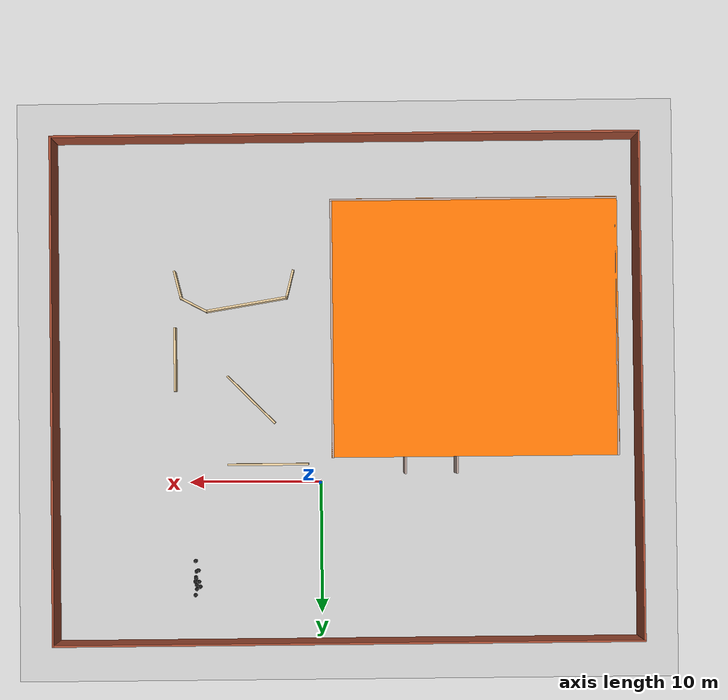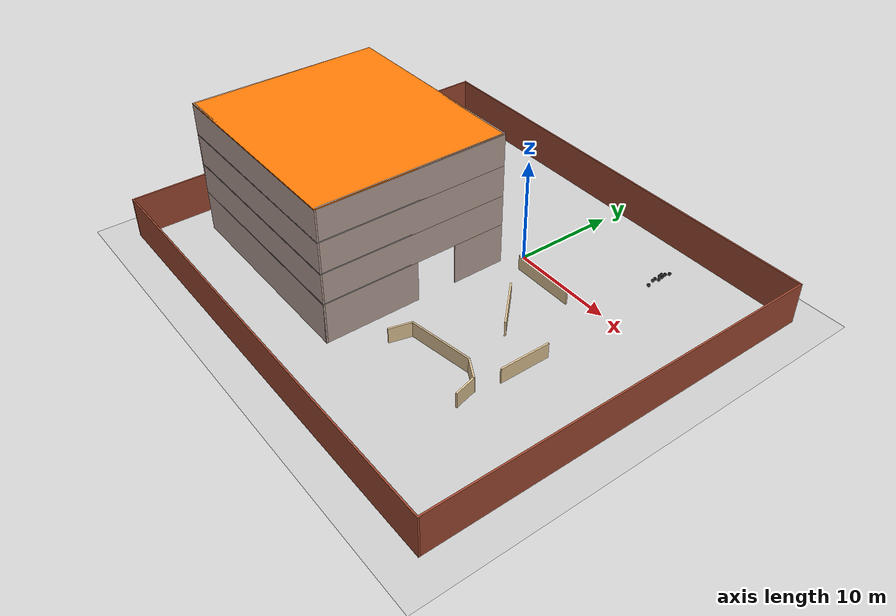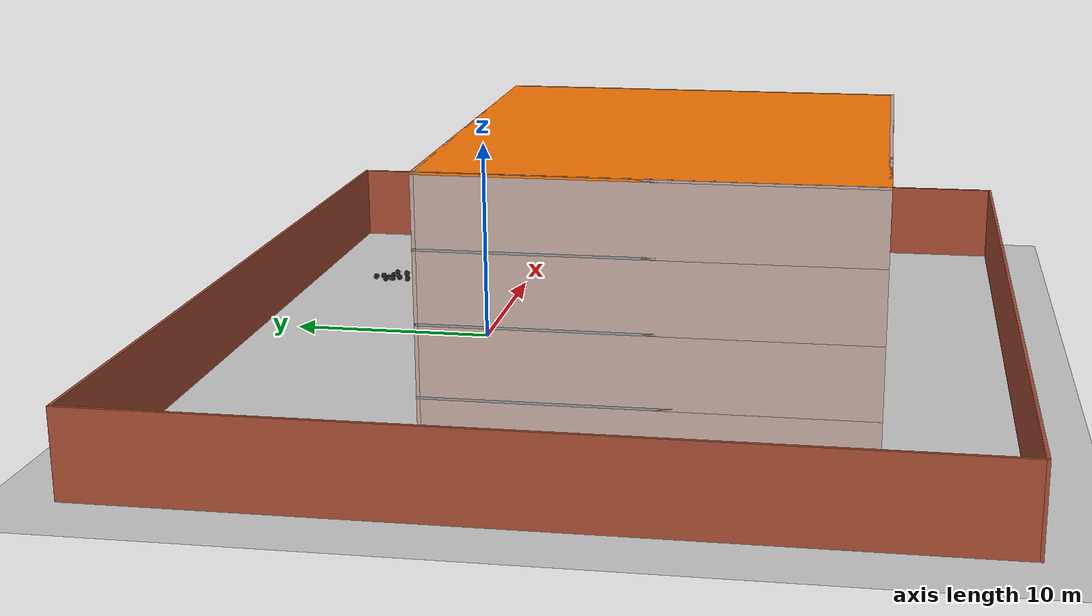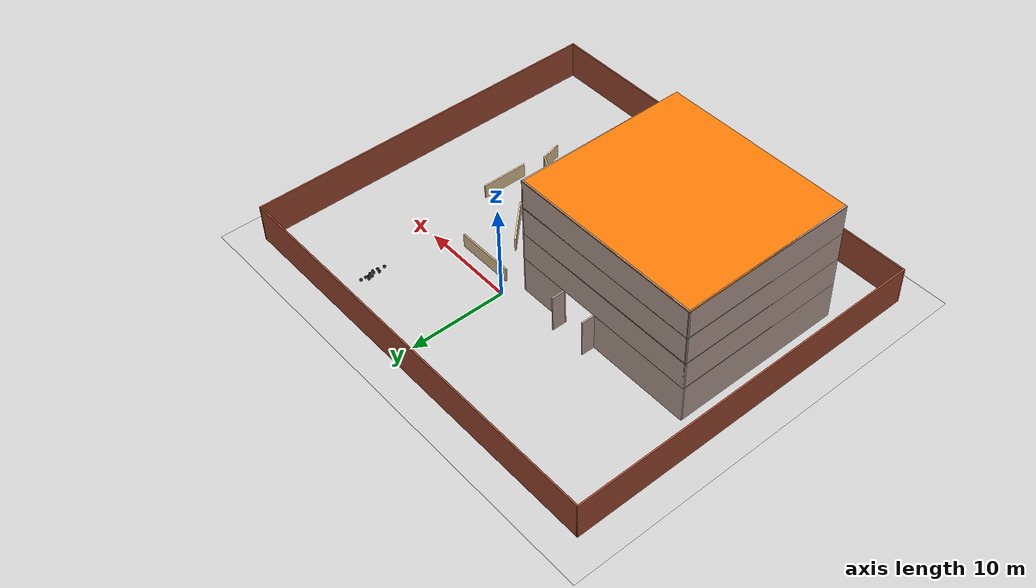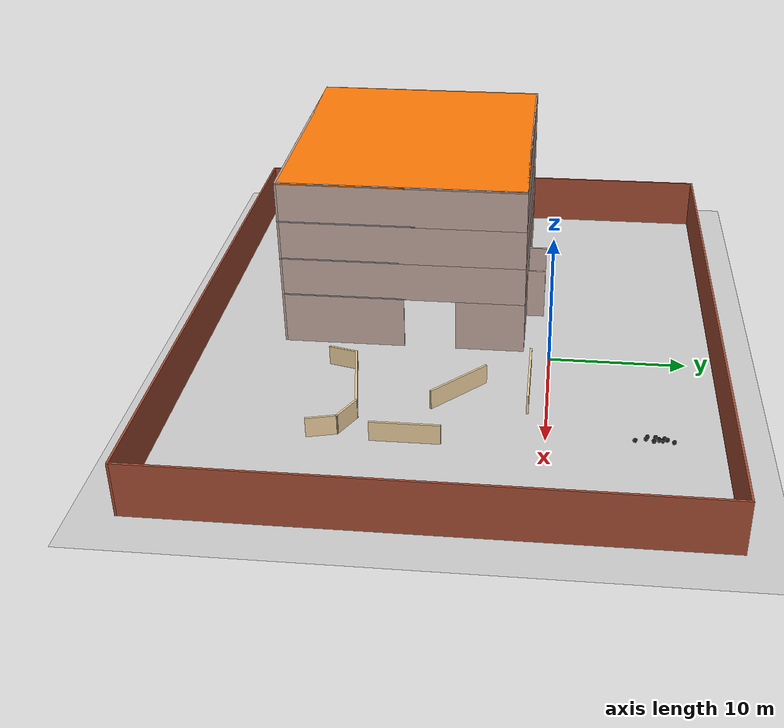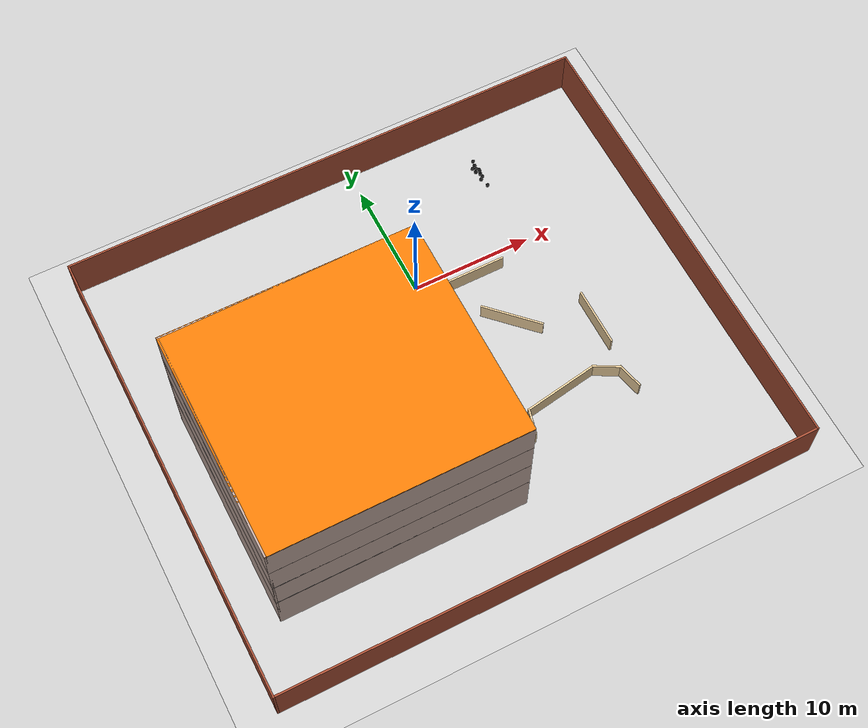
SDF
<sdf version="1.6">
 <world name="default">
  <model name="ground_plane">
   <static>1</static>
   <link name="link">
    <collision name="collision">
     <geometry><plane><normal>0 0 1</normal><size>100 100</size></plane></geometry>
     <surface><friction><ode><mu>100</mu><mu2>50</mu2></ode></friction></surface>
    </collision>
    <visual name="visual">
     <cast_shadows>0</cast_shadows>
     <geometry><plane><normal>0 0 1</normal><size>100 100</size></plane></geometry>
     <material>
      <script><uri>file://media/materials/scripts/gazebo.material</uri><name>Gazebo/Grey</name></script>
     </material>
    </visual>
   </link>
  </model>
  <model name="building2">
   <pose>-11 -10.325 0 0 -0 0</pose>
   <link name="Floor_0">
    <collision name="Floor_0_Collision">
     <geometry><box><size>20.15 18.15 0.1</size></box></geometry>
     <pose>0 0 0.05 0 -0 0</pose>
    </collision>
    <visual name="Floor_0_Visual">
     <pose>0 0 0.05 0 -0 0</pose>
     <geometry><box><size>20.15 18.15 0.1</size></box></geometry>
     <material>
      <script><uri>file://media/materials/scripts/gazebo.material</uri><name>Gazebo/Grey</name></script>
      <ambient>1 1 1 1</ambient>
     </material>
     <meta><layer>1</layer></meta>
    </visual>
    <pose>-0 -0.675 4 0 -0 0</pose>
   </link>
   <link name="Floor_2">
    <collision name="Floor_2_Collision">
     <geometry><box><size>20.15 18.15 0.1</size></box></geometry>
     <pose>0 0 0.05 0 -0 0</pose>
    </collision>
    <visual name="Floor_2_Visual">
     <pose>0 0 0.05 0 -0 0</pose>
     <geometry><box><size>20.15 18.15 0.1</size></box></geometry>
     <material>
      <script><uri>file://media/materials/scripts/gazebo.material</uri><name>Gazebo/Grey</name></script>
      <ambient>1 1 1 1</ambient>
     </material>
     <meta><layer>2</layer></meta>
    </visual>
    <pose>-0 -0.675 7 0 -0 0</pose>
   </link>
   <link name="Floor_3">
    <collision name="Floor_3_Collision">
     <geometry><box><size>20.15 18.15 0.1</size></box></geometry>
     <pose>0 0 0.05 0 -0 0</pose>
    </collision>
    <visual name="Floor_3_Visual">
     <pose>0 0 0.05 0 -0 0</pose>
     <geometry><box><size>20.15 18.15 0.1</size></box></geometry>
     <material>
      <script><uri>file://media/materials/scripts/gazebo.material</uri><name>Gazebo/Grey</name></script>
      <ambient>1 1 1 1</ambient>
     </material>
     <meta><layer>3</layer></meta>
    </visual>
    <pose>-0 -0.675 10 0 -0 0</pose>
   </link>
   <link name="Floor_8">
    <collision name="Floor_8_Collision">
     <geometry><box><size>20.15 18.15 0.1</size></box></geometry>
     <pose>0 0 0.05 0 -0 0</pose>
    </collision>
    <visual name="Floor_8_Visual">
     <pose>0 0 0.05 0 -0 0</pose>
     <geometry><box><size>20.15 18.15 0.1</size></box></geometry>
     <material>
      <script><uri>file://media/materials/scripts/gazebo.material</uri><name>Gazebo/Grey</name></script>
      <ambient>0.996078 0.47451 0.0196078 1</ambient>
     </material>
     <meta><layer>4</layer></meta>
    </visual>
    <pose>-0 -0.675 13 0 -0 0</pose>
   </link>
   <link name="Wall_11">
    <collision name="Wall_11_Collision">
     <geometry><box><size>1.5 0.15 4</size></box></geometry>
     <pose>0 0 2 0 -0 0</pose>
    </collision>
    <visual name="Wall_11_Visual">
     <pose>0 0 2 0 -0 0</pose>
     <geometry><box><size>1.5 0.15 4</size></box></geometry>
     <material>
      <script><uri>file://media/materials/scripts/gazebo.material</uri><name>Gazebo/Grey</name></script>
      <ambient>0.760784 0.662745 0.627451 1</ambient>
     </material>
     <meta><layer>0</layer></meta>
    </visual>
    <pose>0.8 9 0 0 -0 -1.5708</pose>
   </link>
   <link name="Wall_12">
    <collision name="Wall_12_Collision">
     <geometry><box><size>10.95 0.15 4</size></box></geometry>
     <pose>0 0 2 0 -0 0</pose>
    </collision>
    <visual name="Wall_12_Visual">
     <pose>0 0 2 0 -0 0</pose>
     <geometry><box><size>10.95 0.15 4</size></box></geometry>
     <material>
      <script><uri>file://media/materials/scripts/gazebo.material</uri><name>Gazebo/Grey</name></script>
      <ambient>0.760784 0.662745 0.627451 1</ambient>
     </material>
     <meta><layer>0</layer></meta>
    </visual>
    <pose>-4.6 8.325 0 0 -0 3.14159</pose>
   </link>
   <link name="Wall_14">
    <collision name="Wall_14_Collision">
     <geometry><box><size>18.15 0.15 4</size></box></geometry>
     <pose>0 0 2 0 -0 0</pose>
    </collision>
    <visual name="Wall_14_Visual">
     <pose>0 0 2 0 -0 0</pose>
     <geometry><box><size>18.15 0.15 4</size></box></geometry>
     <material>
      <script><uri>file://media/materials/scripts/gazebo.material</uri><name>Gazebo/Grey</name></script>
      <ambient>0.760784 0.662745 0.627451 1</ambient>
     </material>
     <meta><layer>0</layer></meta>
    </visual>
    <pose>-10 -0.675 0 0 -0 -1.5708</pose>
   </link>
   <link name="Wall_16">
    <collision name="Wall_16_Collision">
     <geometry><box><size>20.15 0.15 4</size></box></geometry>
     <pose>0 0 2 0 -0 0</pose>
    </collision>
    <visual name="Wall_16_Visual">
     <pose>0 0 2 0 -0 0</pose>
     <geometry><box><size>20.15 0.15 4</size></box></geometry>
     <material>
      <script><uri>file://media/materials/scripts/gazebo.material</uri><name>Gazebo/Grey</name></script>
      <ambient>0.760784 0.662745 0.627451 1</ambient>
     </material>
     <meta><layer>0</layer></meta>
    </visual>
    <pose>-0 -9.675 0 0 -0 0</pose>
   </link>
   <link name="Wall_24">
    <collision name="Wall_24_Collision">
     <geometry><box><size>18.15 0.15 3</size></box></geometry>
     <pose>0 0 1.5 0 -0 0</pose>
    </collision>
    <visual name="Wall_24_Visual">
     <pose>0 0 1.5 0 -0 0</pose>
     <geometry><box><size>18.15 0.15 3</size></box></geometry>
     <material>
      <script><uri>file://media/materials/scripts/gazebo.material</uri><name>Gazebo/Grey</name></script>
      <ambient>0.760784 0.662745 0.627451 1</ambient>
     </material>
     <meta><layer>1</layer></meta>
    </visual>
    <pose>-10 -0.675 4 0 -0 -1.5708</pose>
   </link>
   <link name="Wall_25">
    <collision name="Wall_25_Collision">
     <geometry><box><size>20.15 0.15 3</size></box></geometry>
     <pose>0 0 1.5 0 -0 0</pose>
    </collision>
    <visual name="Wall_25_Visual">
     <pose>0 0 1.5 0 -0 0</pose>
     <geometry><box><size>20.15 0.15 3</size></box></geometry>
     <material>
      <script><uri>file://media/materials/scripts/gazebo.material</uri><name>Gazebo/Grey</name></script>
      <ambient>0.760784 0.662745 0.627451 1</ambient>
     </material>
     <meta><layer>1</layer></meta>
    </visual>
    <pose>-0 -9.675 4 0 -0 0</pose>
   </link>
   <link name="Wall_31">
    <collision name="Wall_31_Collision">
     <geometry><box><size>20.15 0.15 3</size></box></geometry>
     <pose>0 0 1.5 0 -0 0</pose>
    </collision>
    <visual name="Wall_31_Visual">
     <pose>0 0 1.5 0 -0 0</pose>
     <geometry><box><size>20.15 0.15 3</size></box></geometry>
     <material>
      <script><uri>file://media/materials/scripts/gazebo.material</uri><name>Gazebo/Grey</name></script>
      <ambient>0.760784 0.662745 0.627451 1</ambient>
     </material>
     <meta><layer>1</layer></meta>
    </visual>
    <pose>-0 8.325 4 0 -0 0</pose>
   </link>
   <link name="Wall_33">
    <collision name="Wall_33_Collision">
     <geometry><box><size>18 0.15 3</size></box></geometry>
     <pose>0 0 1.5 0 -0 0</pose>
    </collision>
    <visual name="Wall_33_Visual">
     <pose>0 0 1.5 0 -0 0</pose>
     <geometry><box><size>18 0.15 3</size></box></geometry>
     <material>
      <script><uri>file://media/materials/scripts/gazebo.material</uri><name>Gazebo/Grey</name></script>
      <ambient>0.760784 0.662745 0.627451 1</ambient>
     </material>
     <meta><layer>1</layer></meta>
    </visual>
    <pose>10 -0.6 4 0 -0 -1.5708</pose>
   </link>
   <link name="Wall_4">
    <collision name="Wall_4_Collision">
     <geometry><box><size>5.15 0.15 4</size></box></geometry>
     <pose>0 0 2 0 -0 0</pose>
    </collision>
    <visual name="Wall_4_Visual">
     <pose>0 0 2 0 -0 0</pose>
     <geometry><box><size>5.15 0.15 4</size></box></geometry>
     <material>
      <script><uri>file://media/materials/scripts/gazebo.material</uri><name>Gazebo/Grey</name></script>
      <ambient>0.760784 0.662745 0.627451 1</ambient>
     </material>
     <meta><layer>0</layer></meta>
    </visual>
    <pose>10 5.825 0 0 -0 -1.5708</pose>
   </link>
   <link name="Wall_42">
    <collision name="Wall_42_Collision">
     <geometry><box><size>18.15 0.15 3</size></box></geometry>
     <pose>0 0 1.5 0 -0 0</pose>
    </collision>
    <visual name="Wall_42_Visual">
     <pose>0 0 1.5 0 -0 0</pose>
     <geometry><box><size>18.15 0.15 3</size></box></geometry>
     <material>
      <script><uri>file://media/materials/scripts/gazebo.material</uri><name>Gazebo/Grey</name></script>
      <ambient>0.760784 0.662745 0.627451 1</ambient>
     </material>
     <meta><layer>2</layer></meta>
    </visual>
    <pose>-10 -0.675 7 0 -0 -1.5708</pose>
   </link>
   <link name="Wall_43">
    <collision name="Wall_43_Collision">
     <geometry><box><size>20.15 0.15 3</size></box></geometry>
     <pose>0 0 1.5 0 -0 0</pose>
    </collision>
    <visual name="Wall_43_Visual">
     <pose>0 0 1.5 0 -0 0</pose>
     <geometry><box><size>20.15 0.15 3</size></box></geometry>
     <material>
      <script><uri>file://media/materials/scripts/gazebo.material</uri><name>Gazebo/Grey</name></script>
      <ambient>0.760784 0.662745 0.627451 1</ambient>
     </material>
     <meta><layer>2</layer></meta>
    </visual>
    <pose>-0 -9.675 7 0 -0 0</pose>
   </link>
   <link name="Wall_44">
    <collision name="Wall_44_Collision">
     <geometry><box><size>20.15 0.15 3</size></box></geometry>
     <pose>0 0 1.5 0 -0 0</pose>
    </collision>
    <visual name="Wall_44_Visual">
     <pose>0 0 1.5 0 -0 0</pose>
     <geometry><box><size>20.15 0.15 3</size></box></geometry>
     <material>
      <script><uri>file://media/materials/scripts/gazebo.material</uri><name>Gazebo/Grey</name></script>
      <ambient>0.760784 0.662745 0.627451 1</ambient>
     </material>
     <meta><layer>2</layer></meta>
    </visual>
    <pose>-0 8.325 7 0 -0 0</pose>
   </link>
   <link name="Wall_45">
    <collision name="Wall_45_Collision">
     <geometry><box><size>18 0.15 3</size></box></geometry>
     <pose>0 0 1.5 0 -0 0</pose>
    </collision>
    <visual name="Wall_45_Visual">
     <pose>0 0 1.5 0 -0 0</pose>
     <geometry><box><size>18 0.15 3</size></box></geometry>
     <material>
      <script><uri>file://media/materials/scripts/gazebo.material</uri><name>Gazebo/Grey</name></script>
      <ambient>0.760784 0.662745 0.627451 1</ambient>
     </material>
     <meta><layer>2</layer></meta>
    </visual>
    <pose>10 -0.6 7 0 -0 -1.5708</pose>
   </link>
   <link name="Wall_46">
    <collision name="Wall_46_Collision">
     <geometry><box><size>18.15 0.15 3</size></box></geometry>
     <pose>0 0 1.5 0 -0 0</pose>
    </collision>
    <visual name="Wall_46_Visual">
     <pose>0 0 1.5 0 -0 0</pose>
     <geometry><box><size>18.15 0.15 3</size></box></geometry>
     <material>
      <script><uri>file://media/materials/scripts/gazebo.material</uri><name>Gazebo/Grey</name></script>
      <ambient>0.760784 0.662745 0.627451 1</ambient>
     </material>
     <meta><layer>3</layer></meta>
    </visual>
    <pose>-10 -0.675 10 0 -0 -1.5708</pose>
   </link>
   <link name="Wall_47">
    <collision name="Wall_47_Collision">
     <geometry><box><size>20.15 0.15 3</size></box></geometry>
     <pose>0 0 1.5 0 -0 0</pose>
    </collision>
    <visual name="Wall_47_Visual">
     <pose>0 0 1.5 0 -0 0</pose>
     <geometry><box><size>20.15 0.15 3</size></box></geometry>
     <material>
      <script><uri>file://media/materials/scripts/gazebo.material</uri><name>Gazebo/Grey</name></script>
      <ambient>0.760784 0.662745 0.627451 1</ambient>
     </material>
     <meta><layer>3</layer></meta>
    </visual>
    <pose>-0 -9.675 10 0 -0 0</pose>
   </link>
   <link name="Wall_48">
    <collision name="Wall_48_Collision">
     <geometry><box><size>20.15 0.15 3</size></box></geometry>
     <pose>0 0 1.5 0 -0 0</pose>
    </collision>
    <visual name="Wall_48_Visual">
     <pose>0 0 1.5 0 -0 0</pose>
     <geometry><box><size>20.15 0.15 3</size></box></geometry>
     <material>
      <script><uri>file://media/materials/scripts/gazebo.material</uri><name>Gazebo/Grey</name></script>
      <ambient>0.760784 0.662745 0.627451 1</ambient>
     </material>
     <meta><layer>3</layer></meta>
    </visual>
    <pose>-0 8.325 10 0 -0 0</pose>
   </link>
   <link name="Wall_49">
    <collision name="Wall_49_Collision">
     <geometry><box><size>18 0.15 3</size></box></geometry>
     <pose>0 0 1.5 0 -0 0</pose>
    </collision>
    <visual name="Wall_49_Visual">
     <pose>0 0 1.5 0 -0 0</pose>
     <geometry><box><size>18 0.15 3</size></box></geometry>
     <material>
      <script><uri>file://media/materials/scripts/gazebo.material</uri><name>Gazebo/Grey</name></script>
      <ambient>0.760784 0.662745 0.627451 1</ambient>
     </material>
     <meta><layer>3</layer></meta>
    </visual>
    <pose>10 -0.6 10 0 -0 -1.5708</pose>
   </link>
   <link name="Wall_6">
    <collision name="Wall_6_Collision">
     <geometry><box><size>9.15 0.15 4</size></box></geometry>
     <pose>0 0 2 0 -0 0</pose>
    </collision>
    <visual name="Wall_6_Visual">
     <pose>0 0 2 0 -0 0</pose>
     <geometry><box><size>9.15 0.15 4</size></box></geometry>
     <material>
      <script><uri>file://media/materials/scripts/gazebo.material</uri><name>Gazebo/Grey</name></script>
      <ambient>0.760784 0.662745 0.627451 1</ambient>
     </material>
     <meta><layer>0</layer></meta>
    </visual>
    <pose>10 -5.175 0 0 -0 -1.5708</pose>
   </link>
   <link name="Wall_76">
    <collision name="Wall_76_Collision">
     <geometry><box><size>18.15 0.15 0.1</size></box></geometry>
     <pose>0 0 0.05 0 -0 0</pose>
    </collision>
    <visual name="Wall_76_Visual">
     <pose>0 0 0.05 0 -0 0</pose>
     <geometry><box><size>18.15 0.15 0.1</size></box></geometry>
     <material>
      <script><uri>file://media/materials/scripts/gazebo.material</uri><name>Gazebo/Grey</name></script>
      <ambient>0.760784 0.662745 0.627451 1</ambient>
     </material>
     <meta><layer>4</layer></meta>
    </visual>
    <pose>-10 -0.675 13 0 -0 -1.5708</pose>
   </link>
   <link name="Wall_77">
    <collision name="Wall_77_Collision">
     <geometry><box><size>20.15 0.15 0.1</size></box></geometry>
     <pose>0 0 0.05 0 -0 0</pose>
    </collision>
    <visual name="Wall_77_Visual">
     <pose>0 0 0.05 0 -0 0</pose>
     <geometry><box><size>20.15 0.15 0.1</size></box></geometry>
     <material>
      <script><uri>file://media/materials/scripts/gazebo.material</uri><name>Gazebo/Grey</name></script>
      <ambient>0.760784 0.662745 0.627451 1</ambient>
     </material>
     <meta><layer>4</layer></meta>
    </visual>
    <pose>-0 -9.675 13 0 -0 0</pose>
   </link>
   <link name="Wall_78">
    <collision name="Wall_78_Collision">
     <geometry><box><size>20.15 0.15 0.1</size></box></geometry>
     <pose>0 0 0.05 0 -0 0</pose>
    </collision>
    <visual name="Wall_78_Visual">
     <pose>0 0 0.05 0 -0 0</pose>
     <geometry><box><size>20.15 0.15 0.1</size></box></geometry>
     <material>
      <script><uri>file://media/materials/scripts/gazebo.material</uri><name>Gazebo/Grey</name></script>
      <ambient>0.760784 0.662745 0.627451 1</ambient>
     </material>
     <meta><layer>4</layer></meta>
    </visual>
    <pose>-0 8.325 13 0 -0 0</pose>
   </link>
   <link name="Wall_79">
    <collision name="Wall_79_Collision">
     <geometry><box><size>18 0.15 0.1</size></box></geometry>
     <pose>0 0 0.05 0 -0 0</pose>
    </collision>
    <visual name="Wall_79_Visual">
     <pose>0 0 0.05 0 -0 0</pose>
     <geometry><box><size>18 0.15 0.1</size></box></geometry>
     <material>
      <script><uri>file://media/materials/scripts/gazebo.material</uri><name>Gazebo/Grey</name></script>
      <ambient>0.760784 0.662745 0.627451 1</ambient>
     </material>
     <meta><layer>4</layer></meta>
    </visual>
    <pose>10 -0.6 13 0 -0 -1.5708</pose>
   </link>
   <link name="Wall_8">
    <collision name="Wall_8_Collision">
     <geometry><box><size>5.5 0.15 4</size></box></geometry>
     <pose>0 0 2 0 -0 0</pose>
    </collision>
    <visual name="Wall_8_Visual">
     <pose>0 0 2 0 -0 0</pose>
     <geometry><box><size>5.5 0.15 4</size></box></geometry>
     <material>
      <script><uri>file://media/materials/scripts/gazebo.material</uri><name>Gazebo/Grey</name></script>
      <ambient>0.760784 0.662745 0.627451 1</ambient>
     </material>
     <meta><layer>0</layer></meta>
    </visual>
    <pose>7.325 8.325 0 0 -0 3.14159</pose>
   </link>
   <link name="Wall_9">
    <collision name="Wall_9_Collision">
     <geometry><box><size>1.5 0.15 4</size></box></geometry>
     <pose>0 0 2 0 -0 0</pose>
    </collision>
    <visual name="Wall_9_Visual">
     <pose>0 0 2 0 -0 0</pose>
     <geometry><box><size>1.5 0.15 4</size></box></geometry>
     <material>
      <script><uri>file://media/materials/scripts/gazebo.material</uri><name>Gazebo/Grey</name></script>
      <ambient>0.760784 0.662745 0.627451 1</ambient>
     </material>
     <meta><layer>0</layer></meta>
    </visual>
    <pose>4.65 9 0 0 -0 1.5708</pose>
   </link>
   <static>1</static>
  </model>
  <model name="wall11">
   <pose>-2 -7 0 0 -0 0</pose>
   <link name="Wall_0">
    <collision name="Wall_0_Collision">
     <geometry><box><size>44.15 0.15 4</size></box></geometry>
     <pose>0 0 2 0 -0 0</pose>
    </collision>
    <visual name="Wall_0_Visual">
     <pose>0 0 2 0 -0 0</pose>
     <geometry><box><size>44.15 0.15 4</size></box></geometry>
     <material>
      <script><uri>file://media/materials/scripts/gazebo.material</uri><name>Gazebo/Bricks</name></script>
      <ambient>1 1 1 1</ambient>
     </material>
     <meta><layer>0</layer></meta>
    </visual>
    <pose>0 19 0 0 -0 0</pose>
   </link>
   <link name="Wall_2">
    <collision name="Wall_2_Collision">
     <geometry><box><size>38.15 0.15 4</size></box></geometry>
     <pose>0 0 2 0 -0 0</pose>
    </collision>
    <visual name="Wall_2_Visual">
     <pose>0 0 2 0 -0 0</pose>
     <geometry><box><size>38.15 0.15 4</size></box></geometry>
     <material>
      <script><uri>file://media/materials/scripts/gazebo.material</uri><name>Gazebo/Bricks</name></script>
      <ambient>1 1 1 1</ambient>
     </material>
     <meta><layer>0</layer></meta>
    </visual>
    <pose>22 0 0 0 -0 -1.5708</pose>
   </link>
   <link name="Wall_4">
    <collision name="Wall_4_Collision">
     <geometry><box><size>44.15 0.15 4</size></box></geometry>
     <pose>0 0 2 0 -0 0</pose>
    </collision>
    <visual name="Wall_4_Visual">
     <pose>0 0 2 0 -0 0</pose>
     <geometry><box><size>44.15 0.15 4</size></box></geometry>
     <material>
      <script><uri>file://media/materials/scripts/gazebo.material</uri><name>Gazebo/Bricks</name></script>
      <ambient>1 1 1 1</ambient>
     </material>
     <meta><layer>0</layer></meta>
    </visual>
    <pose>0 -19 0 0 -0 3.14159</pose>
   </link>
   <link name="Wall_6">
    <collision name="Wall_6_Collision">
     <geometry><box><size>38.15 0.15 4</size></box></geometry>
     <pose>0 0 2 0 -0 0</pose>
    </collision>
    <visual name="Wall_6_Visual">
     <pose>0 0 2 0 -0 0</pose>
     <geometry><box><size>38.15 0.15 4</size></box></geometry>
     <material>
      <script><uri>file://media/materials/scripts/gazebo.material</uri><name>Gazebo/Bricks</name></script>
      <ambient>1 1 1 1</ambient>
     </material>
     <meta><layer>0</layer></meta>
    </visual>
    <pose>-22 0 0 0 -0 1.5708</pose>
   </link>
   <static>1</static>
  </model>
  <model name="haoduomiantiaa_38">
   <link name="link_0">
    <inertial>
     <mass>0.2</mass>
     <inertia>
      <ixx>0.166667</ixx>
      <ixy>0</ixy>
      <ixz>0</ixz>
      <iyy>0.166667</iyy>
      <iyz>0</iyz>
      <izz>0.166667</izz>
     </inertia>
    </inertial>
    <visual name="visual">
     <geometry>
      <mesh>
       <uri>/home/oliver/catkin_ws/src/pudong_gazebo/world/stl/haoduomianti.stl</uri>
       <scale>1 1 1</scale>
      </mesh>
     </geometry>
     <material>
      <lighting>1</lighting>
      <script><uri>file://media/materials/scripts/gazebo.material</uri><name>Gazebo/Black</name></script>
      <shader type="pixel"><normal_map>__default__</normal_map></shader>
      <ambient>0.3 0.3 0.3 1</ambient>
      <diffuse>0.7 0.7 0.7 1</diffuse>
      <specular>0.01 0.01 0.01 1</specular>
      <emissive>0 0 0 1</emissive>
     </material>
    </visual>
    <collision name="collision">
     <geometry>
      <mesh>
       <uri>/home/oliver/catkin_ws/src/pudong_gazebo/world/stl/haoduomianti.stl</uri>
       <scale>1 1 1</scale>
      </mesh>
     </geometry>
     <surface>
      <friction>
       <ode><mu>1</mu><mu2>1</mu2><fdir1>0 0 0</fdir1><slip1>0</slip1><slip2>0</slip2></ode>
       <torsional>
        <coefficient>1</coefficient>
        <patch_radius>0</patch_radius>
        <surface_radius>0</surface_radius>
        <use_patch_radius>1</use_patch_radius>
        <ode><slip>0</slip></ode>
       </torsional>
      </friction>
      <bounce><restitution_coefficient>0</restitution_coefficient><threshold>1e+06</threshold></bounce>
      <contact>
       <collide_without_contact>0</collide_without_contact>
       <collide_without_contact_bitmask>1</collide_without_contact_bitmask>
       <collide_bitmask>1</collide_bitmask>
       <ode>
        <soft_cfm>0</soft_cfm>
        <soft_erp>0.2</soft_erp>
        <kp>1e+13</kp>
        <kd>1</kd>
        <max_vel>0.01</max_vel>
        <min_depth>0</min_depth>
       </ode>
       <bullet>
        <split_impulse>1</split_impulse>
        <split_impulse_penetration_threshold>-0.01</split_impulse_penetration_threshold>
        <soft_cfm>0</soft_cfm>
        <soft_erp>0.2</soft_erp>
        <kp>1e+13</kp>
        <kd>1</kd>
       </bullet>
      </contact>
     </surface>
    </collision>
   </link>
   <static>0</static>
   <pose>9.54889 7.81045 -0.113506 0.785398 -0.569285 2.12818</pose>
  </model>
  <model name="haoduomiantiaa_88">
   <link name="link_0">
    <inertial>
     <mass>0.2</mass>
     <inertia>
      <ixx>0.166667</ixx>
      <ixy>0</ixy>
      <ixz>0</ixz>
      <iyy>0.166667</iyy>
      <iyz>0</iyz>
      <izz>0.166667</izz>
     </inertia>
    </inertial>
    <visual name="visual">
     <geometry>
      <mesh>
       <uri>/home/oliver/catkin_ws/src/pudong_gazebo/world/stl/haoduomianti.stl</uri>
       <scale>1 1 1</scale>
      </mesh>
     </geometry>
     <material>
      <lighting>1</lighting>
      <script><uri>file://media/materials/scripts/gazebo.material</uri><name>Gazebo/Black</name></script>
      <shader type="pixel"><normal_map>__default__</normal_map></shader>
      <ambient>0.3 0.3 0.3 1</ambient>
      <diffuse>0.7 0.7 0.7 1</diffuse>
      <specular>0.01 0.01 0.01 1</specular>
      <emissive>0 0 0 1</emissive>
     </material>
    </visual>
    <collision name="collision">
     <geometry>
      <mesh>
       <uri>/home/oliver/catkin_ws/src/pudong_gazebo/world/stl/haoduomianti.stl</uri>
       <scale>1 1 1</scale>
      </mesh>
     </geometry>
     <surface>
      <friction>
       <ode><mu>1</mu><mu2>1</mu2><fdir1>0 0 0</fdir1><slip1>0</slip1><slip2>0</slip2></ode>
       <torsional>
        <coefficient>1</coefficient>
        <patch_radius>0</patch_radius>
        <surface_radius>0</surface_radius>
        <use_patch_radius>1</use_patch_radius>
        <ode><slip>0</slip></ode>
       </torsional>
      </friction>
      <bounce><restitution_coefficient>0</restitution_coefficient><threshold>1e+06</threshold></bounce>
      <contact>
       <collide_without_contact>0</collide_without_contact>
       <collide_without_contact_bitmask>1</collide_without_contact_bitmask>
       <collide_bitmask>1</collide_bitmask>
       <ode>
        <soft_cfm>0</soft_cfm>
        <soft_erp>0.2</soft_erp>
        <kp>1e+13</kp>
        <kd>1</kd>
        <max_vel>0.01</max_vel>
        <min_depth>0</min_depth>
       </ode>
       <bullet>
        <split_impulse>1</split_impulse>
        <split_impulse_penetration_threshold>-0.01</split_impulse_penetration_threshold>
        <soft_cfm>0</soft_cfm>
        <soft_erp>0.2</soft_erp>
        <kp>1e+13</kp>
        <kd>1</kd>
       </bullet>
      </contact>
     </surface>
    </collision>
   </link>
   <static>0</static>
   <pose>9.42808 6.70996 -0.114687 0.785471 -0.56537 -2.96519</pose>
  </model>
  <model name="haoduomiantiaa_102">
   <link name="link_0">
    <inertial>
     <mass>0.2</mass>
     <inertia>
      <ixx>0.166667</ixx>
      <ixy>0</ixy>
      <ixz>0</ixz>
      <iyy>0.166667</iyy>
      <iyz>0</iyz>
      <izz>0.166667</izz>
     </inertia>
    </inertial>
    <visual name="visual">
     <geometry>
      <mesh>
       <uri>/home/oliver/catkin_ws/src/pudong_gazebo/world/stl/haoduomianti.stl</uri>
       <scale>1 1 1</scale>
      </mesh>
     </geometry>
     <material>
      <lighting>1</lighting>
      <script><uri>file://media/materials/scripts/gazebo.material</uri><name>Gazebo/Black</name></script>
      <shader type="pixel"><normal_map>__default__</normal_map></shader>
      <ambient>0.3 0.3 0.3 1</ambient>
      <diffuse>0.7 0.7 0.7 1</diffuse>
      <specular>0.01 0.01 0.01 1</specular>
      <emissive>0 0 0 1</emissive>
     </material>
    </visual>
    <collision name="collision">
     <geometry>
      <mesh>
       <uri>/home/oliver/catkin_ws/src/pudong_gazebo/world/stl/haoduomianti.stl</uri>
       <scale>1 1 1</scale>
      </mesh>
     </geometry>
     <surface>
      <friction>
       <ode><mu>1</mu><mu2>1</mu2><fdir1>0 0 0</fdir1><slip1>0</slip1><slip2>0</slip2></ode>
       <torsional>
        <coefficient>1</coefficient>
        <patch_radius>0</patch_radius>
        <surface_radius>0</surface_radius>
        <use_patch_radius>1</use_patch_radius>
        <ode><slip>0</slip></ode>
       </torsional>
      </friction>
      <bounce><restitution_coefficient>0</restitution_coefficient><threshold>1e+06</threshold></bounce>
      <contact>
       <collide_without_contact>0</collide_without_contact>
       <collide_without_contact_bitmask>1</collide_without_contact_bitmask>
       <collide_bitmask>1</collide_bitmask>
       <ode>
        <soft_cfm>0</soft_cfm>
        <soft_erp>0.2</soft_erp>
        <kp>1e+13</kp>
        <kd>1</kd>
        <max_vel>0.01</max_vel>
        <min_depth>0</min_depth>
       </ode>
       <bullet>
        <split_impulse>1</split_impulse>
        <split_impulse_penetration_threshold>-0.01</split_impulse_penetration_threshold>
        <soft_cfm>0</soft_cfm>
        <soft_erp>0.2</soft_erp>
        <kp>1e+13</kp>
        <kd>1</kd>
       </bullet>
      </contact>
     </surface>
    </collision>
   </link>
   <static>0</static>
   <pose>9.63099 7.603 0.010062 0.865882 -0.440405 -0.847862</pose>
  </model>
  <model name="haoduomiantiaa_124">
   <link name="link_0">
    <inertial>
     <mass>0.2</mass>
     <inertia>
      <ixx>0.166667</ixx>
      <ixy>0</ixy>
      <ixz>0</ixz>
      <iyy>0.166667</iyy>
      <iyz>0</iyz>
      <izz>0.166667</izz>
     </inertia>
    </inertial>
    <visual name="visual">
     <geometry>
      <mesh>
       <uri>/home/oliver/catkin_ws/src/pudong_gazebo/world/stl/haoduomianti.stl</uri>
       <scale>1 1 1</scale>
      </mesh>
     </geometry>
     <material>
      <lighting>1</lighting>
      <script><uri>file://media/materials/scripts/gazebo.material</uri><name>Gazebo/Black</name></script>
      <shader type="pixel"><normal_map>__default__</normal_map></shader>
      <ambient>0.3 0.3 0.3 1</ambient>
      <diffuse>0.7 0.7 0.7 1</diffuse>
      <specular>0.01 0.01 0.01 1</specular>
      <emissive>0 0 0 1</emissive>
     </material>
    </visual>
    <collision name="collision">
     <geometry>
      <mesh>
       <uri>/home/oliver/catkin_ws/src/pudong_gazebo/world/stl/haoduomianti.stl</uri>
       <scale>1 1 1</scale>
      </mesh>
     </geometry>
     <surface>
      <friction>
       <ode><mu>1</mu><mu2>1</mu2><fdir1>0 0 0</fdir1><slip1>0</slip1><slip2>0</slip2></ode>
       <torsional>
        <coefficient>1</coefficient>
        <patch_radius>0</patch_radius>
        <surface_radius>0</surface_radius>
        <use_patch_radius>1</use_patch_radius>
        <ode><slip>0</slip></ode>
       </torsional>
      </friction>
      <bounce><restitution_coefficient>0</restitution_coefficient><threshold>1e+06</threshold></bounce>
      <contact>
       <collide_without_contact>0</collide_without_contact>
       <collide_without_contact_bitmask>1</collide_without_contact_bitmask>
       <collide_bitmask>1</collide_bitmask>
       <ode>
        <soft_cfm>0</soft_cfm>
        <soft_erp>0.2</soft_erp>
        <kp>1e+13</kp>
        <kd>1</kd>
        <max_vel>0.01</max_vel>
        <min_depth>0</min_depth>
       </ode>
       <bullet>
        <split_impulse>1</split_impulse>
        <split_impulse_penetration_threshold>-0.01</split_impulse_penetration_threshold>
        <soft_cfm>0</soft_cfm>
        <soft_erp>0.2</soft_erp>
        <kp>1e+13</kp>
        <kd>1</kd>
       </bullet>
      </contact>
     </surface>
    </collision>
   </link>
   <static>0</static>
   <pose>9.40318 7.56977 -0.110427 0.666852 -0.666017 1.26559</pose>
  </model>
  <model name="haoduomiantiaa_129">
   <link name="link_0">
    <inertial>
     <mass>0.2</mass>
     <inertia>
      <ixx>0.166667</ixx>
      <ixy>0</ixy>
      <ixz>0</ixz>
      <iyy>0.166667</iyy>
      <iyz>0</iyz>
      <izz>0.166667</izz>
     </inertia>
    </inertial>
    <visual name="visual">
     <geometry>
      <mesh>
       <uri>/home/oliver/catkin_ws/src/pudong_gazebo/world/stl/haoduomianti.stl</uri>
       <scale>1 1 1</scale>
      </mesh>
     </geometry>
     <material>
      <lighting>1</lighting>
      <script><uri>file://media/materials/scripts/gazebo.material</uri><name>Gazebo/Black</name></script>
      <shader type="pixel"><normal_map>__default__</normal_map></shader>
      <ambient>0.3 0.3 0.3 1</ambient>
      <diffuse>0.7 0.7 0.7 1</diffuse>
      <specular>0.01 0.01 0.01 1</specular>
      <emissive>0 0 0 1</emissive>
     </material>
    </visual>
    <collision name="collision">
     <geometry>
      <mesh>
       <uri>/home/oliver/catkin_ws/src/pudong_gazebo/world/stl/haoduomianti.stl</uri>
       <scale>1 1 1</scale>
      </mesh>
     </geometry>
     <surface>
      <friction>
       <ode><mu>1</mu><mu2>1</mu2><fdir1>0 0 0</fdir1><slip1>0</slip1><slip2>0</slip2></ode>
       <torsional>
        <coefficient>1</coefficient>
        <patch_radius>0</patch_radius>
        <surface_radius>0</surface_radius>
        <use_patch_radius>1</use_patch_radius>
        <ode><slip>0</slip></ode>
       </torsional>
      </friction>
      <bounce><restitution_coefficient>0</restitution_coefficient><threshold>1e+06</threshold></bounce>
      <contact>
       <collide_without_contact>0</collide_without_contact>
       <collide_without_contact_bitmask>1</collide_without_contact_bitmask>
       <collide_bitmask>1</collide_bitmask>
       <ode>
        <soft_cfm>0</soft_cfm>
        <soft_erp>0.2</soft_erp>
        <kp>1e+13</kp>
        <kd>1</kd>
        <max_vel>0.01</max_vel>
        <min_depth>0</min_depth>
       </ode>
       <bullet>
        <split_impulse>1</split_impulse>
        <split_impulse_penetration_threshold>-0.01</split_impulse_penetration_threshold>
        <soft_cfm>0</soft_cfm>
        <soft_erp>0.2</soft_erp>
        <kp>1e+13</kp>
        <kd>1</kd>
       </bullet>
      </contact>
     </surface>
    </collision>
   </link>
   <static>0</static>
   <pose>9.49841 8.0818 -0.020559 0.590542 -0.726755 -1.46324</pose>
  </model>
  <model name="haoduomiantiaa_136">
   <link name="link_0">
    <inertial>
     <mass>0.2</mass>
     <inertia>
      <ixx>0.166667</ixx>
      <ixy>0</ixy>
      <ixz>0</ixz>
      <iyy>0.166667</iyy>
      <iyz>0</iyz>
      <izz>0.166667</izz>
     </inertia>
    </inertial>
    <visual name="visual">
     <geometry>
      <mesh>
       <uri>/home/oliver/catkin_ws/src/pudong_gazebo/world/stl/haoduomianti.stl</uri>
       <scale>1 1 1</scale>
      </mesh>
     </geometry>
     <material>
      <lighting>1</lighting>
      <script><uri>file://media/materials/scripts/gazebo.material</uri><name>Gazebo/Black</name></script>
      <shader type="pixel"><normal_map>__default__</normal_map></shader>
      <ambient>0.3 0.3 0.3 1</ambient>
      <diffuse>0.7 0.7 0.7 1</diffuse>
      <specular>0.01 0.01 0.01 1</specular>
      <emissive>0 0 0 1</emissive>
     </material>
    </visual>
    <collision name="collision">
     <geometry>
      <mesh>
       <uri>/home/oliver/catkin_ws/src/pudong_gazebo/world/stl/haoduomianti.stl</uri>
       <scale>1 1 1</scale>
      </mesh>
     </geometry>
     <surface>
      <friction>
       <ode><mu>1</mu><mu2>1</mu2><fdir1>0 0 0</fdir1><slip1>0</slip1><slip2>0</slip2></ode>
       <torsional>
        <coefficient>1</coefficient>
        <patch_radius>0</patch_radius>
        <surface_radius>0</surface_radius>
        <use_patch_radius>1</use_patch_radius>
        <ode><slip>0</slip></ode>
       </torsional>
      </friction>
      <bounce><restitution_coefficient>0</restitution_coefficient><threshold>1e+06</threshold></bounce>
      <contact>
       <collide_without_contact>0</collide_without_contact>
       <collide_without_contact_bitmask>1</collide_without_contact_bitmask>
       <collide_bitmask>1</collide_bitmask>
       <ode>
        <soft_cfm>0</soft_cfm>
        <soft_erp>0.2</soft_erp>
        <kp>1e+13</kp>
        <kd>1</kd>
        <max_vel>0.01</max_vel>
        <min_depth>0</min_depth>
       </ode>
       <bullet>
        <split_impulse>1</split_impulse>
        <split_impulse_penetration_threshold>-0.01</split_impulse_penetration_threshold>
        <soft_cfm>0</soft_cfm>
        <soft_erp>0.2</soft_erp>
        <kp>1e+13</kp>
        <kd>1</kd>
       </bullet>
      </contact>
     </surface>
    </collision>
   </link>
   <static>0</static>
   <pose>9.57286 6.82413 0.158884 0.885513 -0.410388 -1.50248</pose>
  </model>
  <model name="haoduomiantiaa_144">
   <link name="link_0">
    <inertial>
     <mass>0.2</mass>
     <inertia>
      <ixx>0.166667</ixx>
      <ixy>0</ixy>
      <ixz>0</ixz>
      <iyy>0.166667</iyy>
      <iyz>0</iyz>
      <izz>0.166667</izz>
     </inertia>
    </inertial>
    <visual name="visual">
     <geometry>
      <mesh>
       <uri>/home/oliver/catkin_ws/src/pudong_gazebo/world/stl/haoduomianti.stl</uri>
       <scale>1 1 1</scale>
      </mesh>
     </geometry>
     <material>
      <lighting>1</lighting>
      <script><uri>file://media/materials/scripts/gazebo.material</uri><name>Gazebo/Black</name></script>
      <shader type="pixel"><normal_map>__default__</normal_map></shader>
      <ambient>0.3 0.3 0.3 1</ambient>
      <diffuse>0.7 0.7 0.7 1</diffuse>
      <specular>0.01 0.01 0.01 1</specular>
      <emissive>0 0 0 1</emissive>
     </material>
    </visual>
    <collision name="collision">
     <geometry>
      <mesh>
       <uri>/home/oliver/catkin_ws/src/pudong_gazebo/world/stl/haoduomianti.stl</uri>
       <scale>1 1 1</scale>
      </mesh>
     </geometry>
     <surface>
      <friction>
       <ode><mu>1</mu><mu2>1</mu2><fdir1>0 0 0</fdir1><slip1>0</slip1><slip2>0</slip2></ode>
       <torsional>
        <coefficient>1</coefficient>
        <patch_radius>0</patch_radius>
        <surface_radius>0</surface_radius>
        <use_patch_radius>1</use_patch_radius>
        <ode><slip>0</slip></ode>
       </torsional>
      </friction>
      <bounce><restitution_coefficient>0</restitution_coefficient><threshold>1e+06</threshold></bounce>
      <contact>
       <collide_without_contact>0</collide_without_contact>
       <collide_without_contact_bitmask>1</collide_without_contact_bitmask>
       <collide_bitmask>1</collide_bitmask>
       <ode>
        <soft_cfm>0</soft_cfm>
        <soft_erp>0.2</soft_erp>
        <kp>1e+13</kp>
        <kd>1</kd>
        <max_vel>0.01</max_vel>
        <min_depth>0</min_depth>
       </ode>
       <bullet>
        <split_impulse>1</split_impulse>
        <split_impulse_penetration_threshold>-0.01</split_impulse_penetration_threshold>
        <soft_cfm>0</soft_cfm>
        <soft_erp>0.2</soft_erp>
        <kp>1e+13</kp>
        <kd>1</kd>
       </bullet>
      </contact>
     </surface>
    </collision>
   </link>
   <static>0</static>
   <pose>9.62149 7.21828 -0.114629 0.810165 -0.626784 -1.91136</pose>
  </model>
  <model name="haoduomiantiaa_145">
   <link name="link_0">
    <inertial>
     <mass>0.2</mass>
     <inertia>
      <ixx>0.166667</ixx>
      <ixy>0</ixy>
      <ixz>0</ixz>
      <iyy>0.166667</iyy>
      <iyz>0</iyz>
      <izz>0.166667</izz>
     </inertia>
    </inertial>
    <visual name="visual">
     <geometry>
      <mesh>
       <uri>/home/oliver/catkin_ws/src/pudong_gazebo/world/stl/haoduomianti.stl</uri>
       <scale>1 1 1</scale>
      </mesh>
     </geometry>
     <material>
      <lighting>1</lighting>
      <script><uri>file://media/materials/scripts/gazebo.material</uri><name>Gazebo/Black</name></script>
      <shader type="pixel"><normal_map>__default__</normal_map></shader>
      <ambient>0.3 0.3 0.3 1</ambient>
      <diffuse>0.7 0.7 0.7 1</diffuse>
      <specular>0.01 0.01 0.01 1</specular>
      <emissive>0 0 0 1</emissive>
     </material>
    </visual>
    <collision name="collision">
     <geometry>
      <mesh>
       <uri>/home/oliver/catkin_ws/src/pudong_gazebo/world/stl/haoduomianti.stl</uri>
       <scale>1 1 1</scale>
      </mesh>
     </geometry>
     <surface>
      <friction>
       <ode><mu>1</mu><mu2>1</mu2><fdir1>0 0 0</fdir1><slip1>0</slip1><slip2>0</slip2></ode>
       <torsional>
        <coefficient>1</coefficient>
        <patch_radius>0</patch_radius>
        <surface_radius>0</surface_radius>
        <use_patch_radius>1</use_patch_radius>
        <ode><slip>0</slip></ode>
       </torsional>
      </friction>
      <bounce><restitution_coefficient>0</restitution_coefficient><threshold>1e+06</threshold></bounce>
      <contact>
       <collide_without_contact>0</collide_without_contact>
       <collide_without_contact_bitmask>1</collide_without_contact_bitmask>
       <collide_bitmask>1</collide_bitmask>
       <ode>
        <soft_cfm>0</soft_cfm>
        <soft_erp>0.2</soft_erp>
        <kp>1e+13</kp>
        <kd>1</kd>
        <max_vel>0.01</max_vel>
        <min_depth>0</min_depth>
       </ode>
       <bullet>
        <split_impulse>1</split_impulse>
        <split_impulse_penetration_threshold>-0.01</split_impulse_penetration_threshold>
        <soft_cfm>0</soft_cfm>
        <soft_erp>0.2</soft_erp>
        <kp>1e+13</kp>
        <kd>1</kd>
       </bullet>
      </contact>
     </surface>
    </collision>
   </link>
   <static>0</static>
   <pose>9.62842 5.97578 -0.115384 0.784668 -0.615183 1.4766</pose>
  </model>
  <model name="haoduomiantiaa_150">
   <link name="link_0">
    <inertial>
     <mass>0.2</mass>
     <inertia>
      <ixx>0.166667</ixx>
      <ixy>0</ixy>
      <ixz>0</ixz>
      <iyy>0.166667</iyy>
      <iyz>0</iyz>
      <izz>0.166667</izz>
     </inertia>
    </inertial>
    <visual name="visual">
     <geometry>
      <mesh>
       <uri>/home/oliver/catkin_ws/src/pudong_gazebo/world/stl/haoduomianti.stl</uri>
       <scale>1 1 1</scale>
      </mesh>
     </geometry>
     <material>
      <lighting>1</lighting>
      <script><uri>file://media/materials/scripts/gazebo.material</uri><name>Gazebo/Black</name></script>
      <shader type="pixel"><normal_map>__default__</normal_map></shader>
      <ambient>0.3 0.3 0.3 1</ambient>
      <diffuse>0.7 0.7 0.7 1</diffuse>
      <specular>0.01 0.01 0.01 1</specular>
      <emissive>0 0 0 1</emissive>
     </material>
    </visual>
    <collision name="collision">
     <geometry>
      <mesh>
       <uri>/home/oliver/catkin_ws/src/pudong_gazebo/world/stl/haoduomianti.stl</uri>
       <scale>1 1 1</scale>
      </mesh>
     </geometry>
     <surface>
      <friction>
       <ode><mu>1</mu><mu2>1</mu2><fdir1>0 0 0</fdir1><slip1>0</slip1><slip2>0</slip2></ode>
       <torsional>
        <coefficient>1</coefficient>
        <patch_radius>0</patch_radius>
        <surface_radius>0</surface_radius>
        <use_patch_radius>1</use_patch_radius>
        <ode><slip>0</slip></ode>
       </torsional>
      </friction>
      <bounce><restitution_coefficient>0</restitution_coefficient><threshold>1e+06</threshold></bounce>
      <contact>
       <collide_without_contact>0</collide_without_contact>
       <collide_without_contact_bitmask>1</collide_without_contact_bitmask>
       <collide_bitmask>1</collide_bitmask>
       <ode>
        <soft_cfm>0</soft_cfm>
        <soft_erp>0.2</soft_erp>
        <kp>1e+13</kp>
        <kd>1</kd>
        <max_vel>0.01</max_vel>
        <min_depth>0</min_depth>
       </ode>
       <bullet>
        <split_impulse>1</split_impulse>
        <split_impulse_penetration_threshold>-0.01</split_impulse_penetration_threshold>
        <soft_cfm>0</soft_cfm>
        <soft_erp>0.2</soft_erp>
        <kp>1e+13</kp>
        <kd>1</kd>
       </bullet>
      </contact>
     </surface>
    </collision>
   </link>
   <static>0</static>
   <pose>9.6465 8.58095 -0.115244 0.790222 -0.616766 2.90803</pose>
  </model>
  <model name="haoduomiantiaa_162">
   <link name="link_0">
    <inertial>
     <mass>0.2</mass>
     <inertia>
      <ixx>0.166667</ixx>
      <ixy>0</ixy>
      <ixz>0</ixz>
      <iyy>0.166667</iyy>
      <iyz>0</iyz>
      <izz>0.166667</izz>
     </inertia>
    </inertial>
    <visual name="visual">
     <geometry>
      <mesh>
       <uri>/home/oliver/catkin_ws/src/pudong_gazebo/world/stl/haoduomianti.stl</uri>
       <scale>1 1 1</scale>
      </mesh>
     </geometry>
     <material>
      <lighting>1</lighting>
      <script><uri>file://media/materials/scripts/gazebo.material</uri><name>Gazebo/Black</name></script>
      <shader type="pixel"><normal_map>__default__</normal_map></shader>
      <ambient>0.3 0.3 0.3 1</ambient>
      <diffuse>0.7 0.7 0.7 1</diffuse>
      <specular>0.01 0.01 0.01 1</specular>
      <emissive>0 0 0 1</emissive>
     </material>
    </visual>
    <collision name="collision">
     <geometry>
      <mesh>
       <uri>/home/oliver/catkin_ws/src/pudong_gazebo/world/stl/haoduomianti.stl</uri>
       <scale>1 1 1</scale>
      </mesh>
     </geometry>
     <surface>
      <friction>
       <ode><mu>1</mu><mu2>1</mu2><fdir1>0 0 0</fdir1><slip1>0</slip1><slip2>0</slip2></ode>
       <torsional>
        <coefficient>1</coefficient>
        <patch_radius>0</patch_radius>
        <surface_radius>0</surface_radius>
        <use_patch_radius>1</use_patch_radius>
        <ode><slip>0</slip></ode>
       </torsional>
      </friction>
      <bounce><restitution_coefficient>0</restitution_coefficient><threshold>1e+06</threshold></bounce>
      <contact>
       <collide_without_contact>0</collide_without_contact>
       <collide_without_contact_bitmask>1</collide_without_contact_bitmask>
       <collide_bitmask>1</collide_bitmask>
       <ode>
        <soft_cfm>0</soft_cfm>
        <soft_erp>0.2</soft_erp>
        <kp>1e+13</kp>
        <kd>1</kd>
        <max_vel>0.01</max_vel>
        <min_depth>0</min_depth>
       </ode>
       <bullet>
        <split_impulse>1</split_impulse>
        <split_impulse_penetration_threshold>-0.01</split_impulse_penetration_threshold>
        <soft_cfm>0</soft_cfm>
        <soft_erp>0.2</soft_erp>
        <kp>1e+13</kp>
        <kd>1</kd>
       </bullet>
      </contact>
     </surface>
    </collision>
   </link>
   <static>0</static>
   <pose>9.58796 7.29959 0.173992 0.756217 -0.596301 1.13859</pose>
  </model>
  <model name="haoduomiantiaa_187">
   <link name="link_0">
    <inertial>
     <mass>0.2</mass>
     <inertia>
      <ixx>0.166667</ixx>
      <ixy>0</ixy>
      <ixz>0</ixz>
      <iyy>0.166667</iyy>
      <iyz>0</iyz>
      <izz>0.166667</izz>
     </inertia>
    </inertial>
    <visual name="visual">
     <geometry>
      <mesh>
       <uri>/home/oliver/catkin_ws/src/pudong_gazebo/world/stl/haoduomianti.stl</uri>
       <scale>1 1 1</scale>
      </mesh>
     </geometry>
     <material>
      <lighting>1</lighting>
      <script><uri>file://media/materials/scripts/gazebo.material</uri><name>Gazebo/Black</name></script>
      <shader type="pixel"><normal_map>__default__</normal_map></shader>
      <ambient>0.3 0.3 0.3 1</ambient>
      <diffuse>0.7 0.7 0.7 1</diffuse>
      <specular>0.01 0.01 0.01 1</specular>
      <emissive>0 0 0 1</emissive>
     </material>
    </visual>
    <collision name="collision">
     <geometry>
      <mesh>
       <uri>/home/oliver/catkin_ws/src/pudong_gazebo/world/stl/haoduomianti.stl</uri>
       <scale>1 1 1</scale>
      </mesh>
     </geometry>
     <surface>
      <friction>
       <ode><mu>1</mu><mu2>1</mu2><fdir1>0 0 0</fdir1><slip1>0</slip1><slip2>0</slip2></ode>
       <torsional>
        <coefficient>1</coefficient>
        <patch_radius>0</patch_radius>
        <surface_radius>0</surface_radius>
        <use_patch_radius>1</use_patch_radius>
        <ode><slip>0</slip></ode>
       </torsional>
      </friction>
      <bounce><restitution_coefficient>0</restitution_coefficient><threshold>1e+06</threshold></bounce>
      <contact>
       <collide_without_contact>0</collide_without_contact>
       <collide_without_contact_bitmask>1</collide_without_contact_bitmask>
       <collide_bitmask>1</collide_bitmask>
       <ode>
        <soft_cfm>0</soft_cfm>
        <soft_erp>0.2</soft_erp>
        <kp>1e+13</kp>
        <kd>1</kd>
        <max_vel>0.01</max_vel>
        <min_depth>0</min_depth>
       </ode>
       <bullet>
        <split_impulse>1</split_impulse>
        <split_impulse_penetration_threshold>-0.01</split_impulse_penetration_threshold>
        <soft_cfm>0</soft_cfm>
        <soft_erp>0.2</soft_erp>
        <kp>1e+13</kp>
        <kd>1</kd>
       </bullet>
      </contact>
     </surface>
    </collision>
   </link>
   <static>0</static>
   <pose>9.28079 7.94665 -0.115496 0.7854 -0.615477 1.12932</pose>
  </model>
  <model name="Untitled112">
   <pose>6.00798 -8.67297 0 0 -0 0</pose>
   <link name="Wall_0">
    <collision name="Wall_0_Collision">
     <geometry><box><size>6.15 0.15 1.5</size></box></geometry>
     <pose>0 0 0.75 0 -0 0</pose>
    </collision>
    <visual name="Wall_0_Visual">
     <pose>0 0 0.75 0 -0 0</pose>
     <geometry><box><size>6.15 0.15 1.5</size></box></geometry>
     <material>
      <script><uri>file://media/materials/scripts/gazebo.material</uri><name>Gazebo/Grey</name></script>
      <ambient>0.921569 0.807843 0.615686 1</ambient>
     </material>
     <meta><layer>0</layer></meta>
    </visual>
    <pose>-2.00798 7.34298 0 0 -0 0</pose>
   </link>
   <link name="Wall_10">
    <collision name="Wall_10_Collision">
     <geometry><box><size>2.21155 0.15 1.5</size></box></geometry>
     <pose>0 0 0.75 0 -0 0</pose>
    </collision>
    <visual name="Wall_10_Visual">
     <pose>0 0 0.75 0 -0 0</pose>
     <geometry><box><size>2.21155 0.15 1.5</size></box></geometry>
     <material>
      <script><uri>file://media/materials/scripts/gazebo.material</uri><name>Gazebo/Grey</name></script>
      <ambient>0.921569 0.807843 0.615686 1</ambient>
     </material>
     <meta><layer>0</layer></meta>
    </visual>
    <pose>4.74202 -6.32702 0 0 -0 -1.32582</pose>
   </link>
   <link name="Wall_2">
    <collision name="Wall_2_Collision">
     <geometry><box><size>5.09975 0.15 1.5</size></box></geometry>
     <pose>0 0 0.75 0 -0 0</pose>
    </collision>
    <visual name="Wall_2_Visual">
     <pose>0 0 0.75 0 -0 0</pose>
     <geometry><box><size>5.09975 0.15 1.5</size></box></geometry>
     <material>
      <script><uri>file://media/materials/scripts/gazebo.material</uri><name>Gazebo/Grey</name></script>
      <ambient>0.921569 0.807843 0.615686 1</ambient>
     </material>
     <meta><layer>0</layer></meta>
    </visual>
    <pose>-0.757975 2.42298 0 0 -0 -0.785398</pose>
   </link>
   <link name="Wall_4">
    <collision name="Wall_4_Collision">
     <geometry><box><size>4.853 0.15 1.5</size></box></geometry>
     <pose>0 0 0.75 0 -0 0</pose>
    </collision>
    <visual name="Wall_4_Visual">
     <pose>0 0 0.75 0 -0 0</pose>
     <geometry><box><size>4.853 0.15 1.5</size></box></geometry>
     <material>
      <script><uri>file://media/materials/scripts/gazebo.material</uri><name>Gazebo/Grey</name></script>
      <ambient>0.921569 0.807843 0.615686 1</ambient>
     </material>
     <meta><layer>0</layer></meta>
    </visual>
    <pose>4.99202 -0.678525 0 0 -0 -1.5708</pose>
   </link>
   <link name="Wall_6">
    <collision name="Wall_6_Collision">
     <geometry><box><size>2.21155 0.15 1.5</size></box></geometry>
     <pose>0 0 0.75 0 -0 0</pose>
    </collision>
    <visual name="Wall_6_Visual">
     <pose>0 0 0.75 0 -0 0</pose>
     <geometry><box><size>2.21155 0.15 1.5</size></box></geometry>
     <material>
      <script><uri>file://media/materials/scripts/gazebo.material</uri><name>Gazebo/Grey</name></script>
      <ambient>0.921569 0.807843 0.615686 1</ambient>
     </material>
     <meta><layer>0</layer></meta>
    </visual>
    <pose>-3.75798 -6.32702 0 0 -0 1.32582</pose>
   </link>
   <link name="Wall_7">
    <collision name="Wall_7_Collision">
     <geometry><box><size>6.33142 0.15 1.5</size></box></geometry>
     <pose>0 0 0.75 0 -0 0</pose>
    </collision>
    <visual name="Wall_7_Visual">
     <pose>0 0 0.75 0 -0 0</pose>
     <geometry><box><size>6.33142 0.15 1.5</size></box></geometry>
     <material>
      <script><uri>file://media/materials/scripts/gazebo.material</uri><name>Gazebo/Grey</name></script>
      <ambient>0.921569 0.807843 0.615686 1</ambient>
     </material>
     <meta><layer>0</layer></meta>
    </visual>
    <pose>-0.457975 -4.82702 0 0 -0 0.162489</pose>
   </link>
   <link name="Wall_9">
    <collision name="Wall_9_Collision">
     <geometry><box><size>2.28206 0.15 1.5</size></box></geometry>
     <pose>0 0 0.75 0 -0 0</pose>
    </collision>
    <visual name="Wall_9_Visual">
     <pose>0 0 0.75 0 -0 0</pose>
     <geometry><box><size>2.28206 0.15 1.5</size></box></geometry>
     <material>
      <script><uri>file://media/materials/scripts/gazebo.material</uri><name>Gazebo/Grey</name></script>
      <ambient>0.921569 0.807843 0.615686 1</ambient>
     </material>
     <meta><layer>0</layer></meta>
    </visual>
    <pose>3.55052 -4.82702 0 0 -0 -0.488192</pose>
   </link>
   <static>1</static>
  </model>
 </world>
</sdf>
